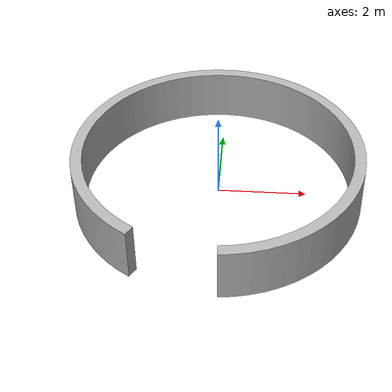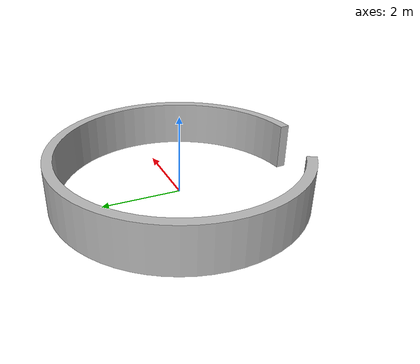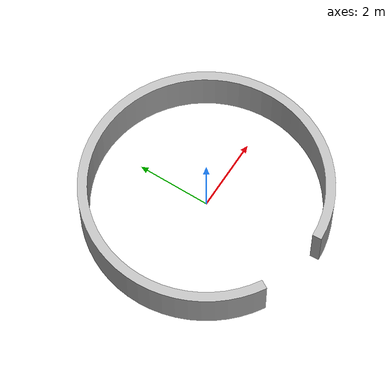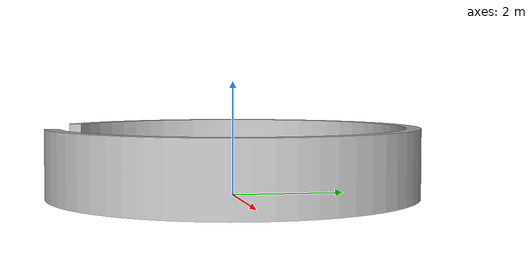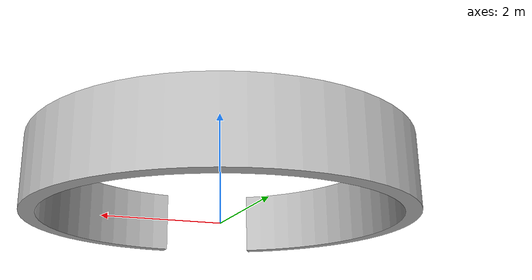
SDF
<?xml version="1.0" ?>
<sdf version="1.5">
  <model name="circle">
    <static>true</static>
    <link name="link">
      <collision name="collision">
        <geometry>
          <mesh>
            <uri>model://circle/meshes/circle.dae</uri>
          </mesh>
        </geometry>
      </collision>
      <visual name="visual">
        <geometry>
          <mesh>
            <uri>model://circle/meshes/circle.dae</uri>
          </mesh>
        </geometry>
      </visual>
    </link>
  </model>
</sdf>
